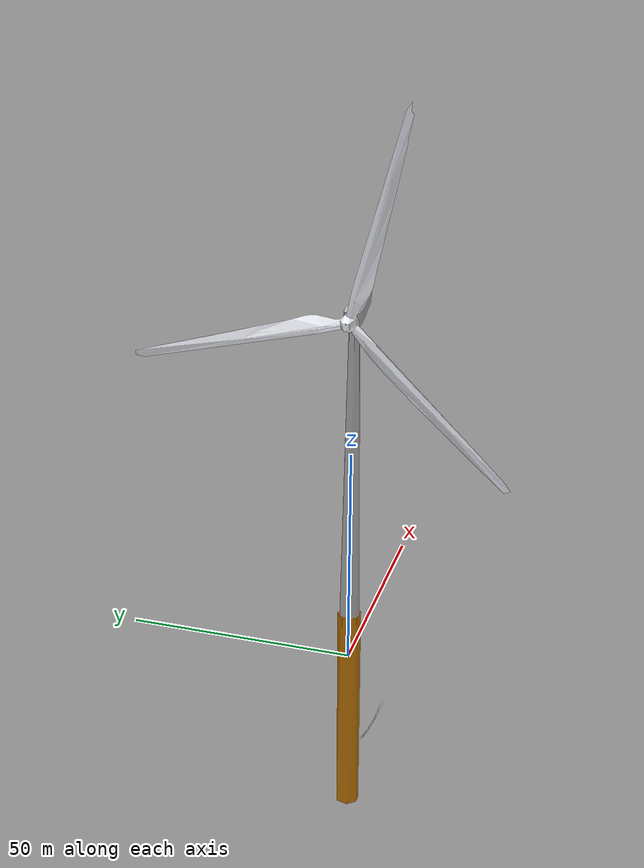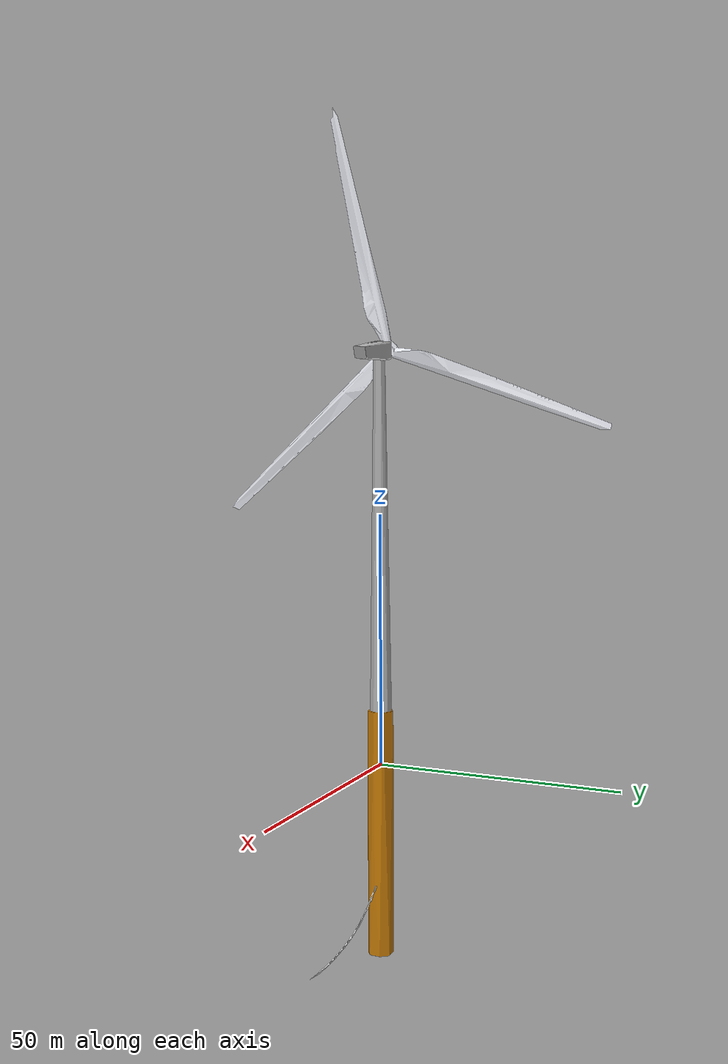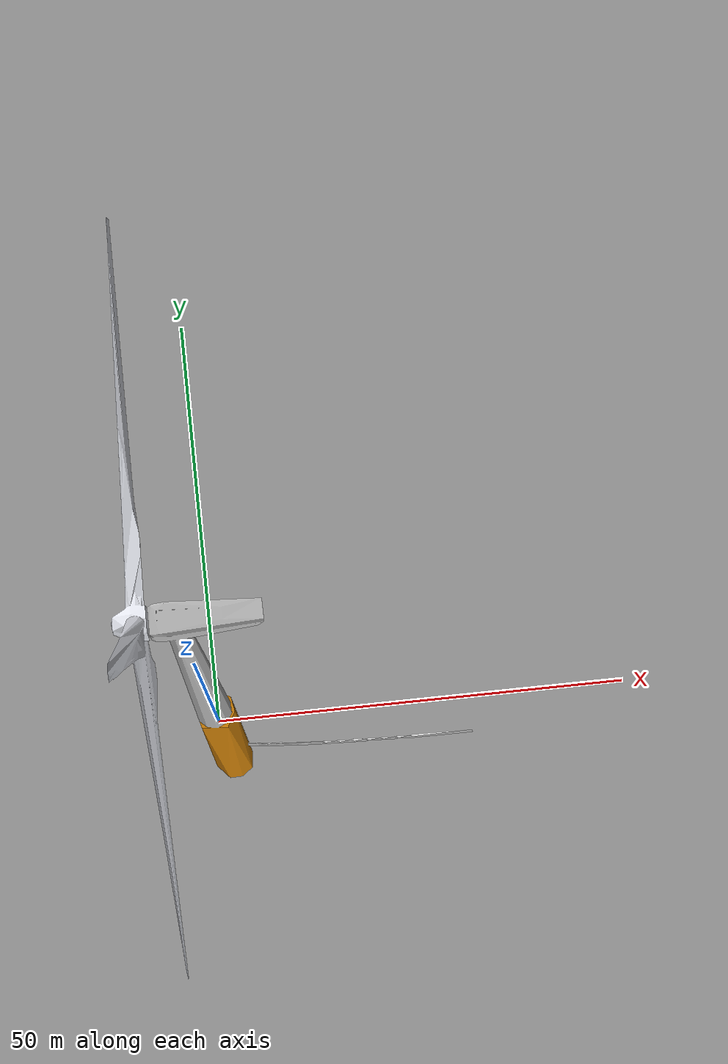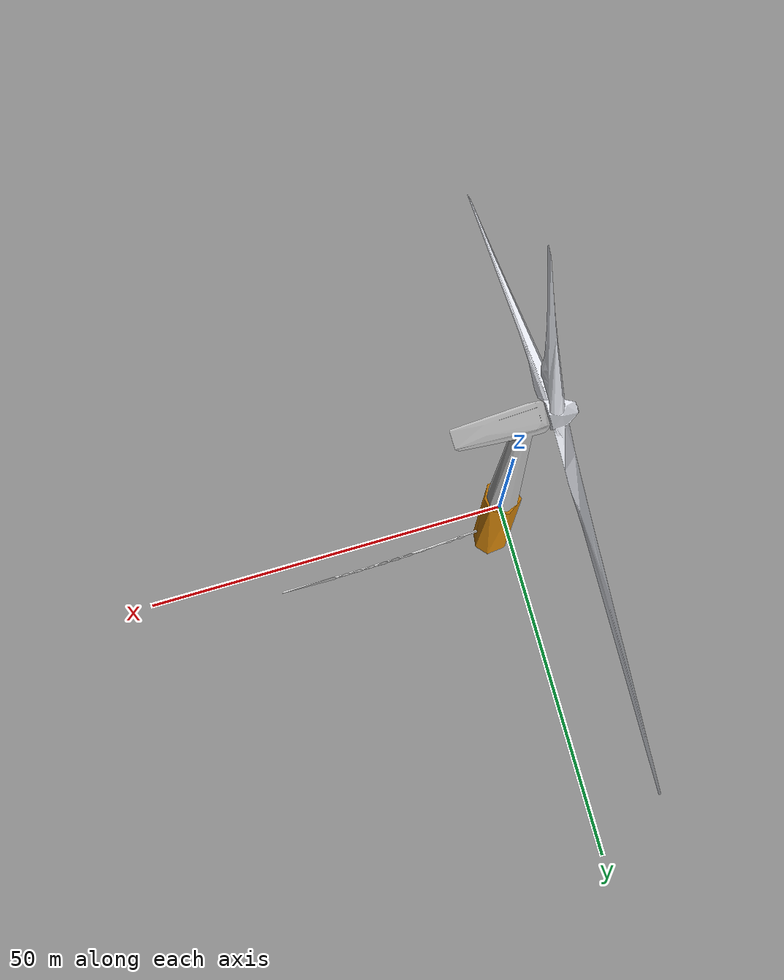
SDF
<?xml version="1.0" ?>
<sdf version="1.6">

  <model name='turbine'>

    <link name="rotor">
      <pose>0 0 81.7 0 0 0</pose>

      <inertial>
        <mass>15</mass>
        <inertia>
          <ixx>1.0051</ixx>
          <iyy>1.0051</iyy>
          <izz>1.0090</izz>
          <ixy>0</ixy>
          <ixy>0</ixy>
          <ixz>0</ixz>
          <iyz>0</iyz>
        </inertia>
     </inertial>

      <visual name="visual">
          <geometry>
            <mesh>
              <uri>model://turbine_rotor/meshes/rotor_low.dae</uri>
            </mesh>
          </geometry>
      </visual>
    </link>

    <model name='turbine_base'>

    <static>1</static>
    <pose frame=''>0 0 0 0 0 0</pose>

    <link name='mast'>

      <inertial>
        <mass>100000</mass>
        <inertia>
          <ixx>100000</ixx>
          <iyy>100000</iyy>
          <izz>100000</izz>
          <ixy>0</ixy>
          <ixy>0</ixy>
          <ixz>0</ixz>
          <iyz>0</iyz>
        </inertia>
      </inertial>

      <collision name='collision'>
        <pose>0 0 0 0 0 0</pose>
        <geometry>
          <mesh><uri>model://turbine_rotor/meshes/monopile2_low.dae</uri></mesh>
        </geometry>
        <max_contacts>10</max_contacts>
      </collision>

      <visual name='visual'>
        <pose>0 0 0 0 0 0</pose>
        <geometry>
          <mesh><uri>model://turbine_rotor/meshes/monopile2_low.dae</uri></mesh>
        </geometry>
      </visual>

      <self_collide>0</self_collide>
      <enable_wind>0</enable_wind>
      <kinematic>0</kinematic>
    </link>
    </model>

    <joint type="revolute" name="rotor_hinge">
      <pose>0 0 0 0 0 0</pose>
      <child>rotor</child>
      <parent>turbine_base::mast</parent>
      <axis>
        <xyz>1 0 0</xyz>
      </axis>
    </joint>

  -->

  </model>
</sdf>
